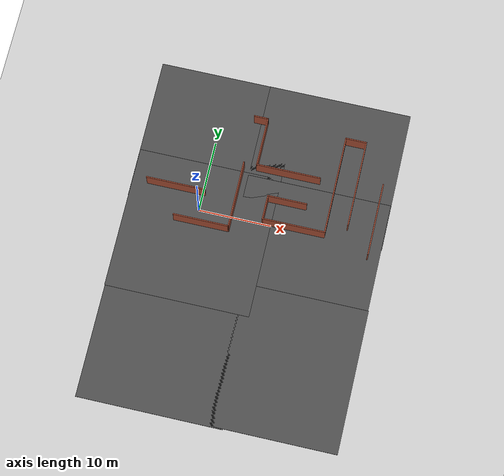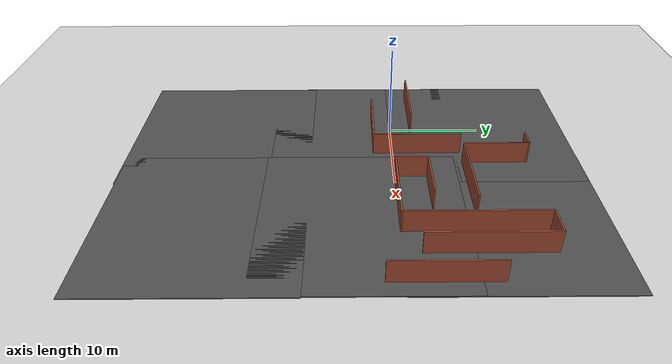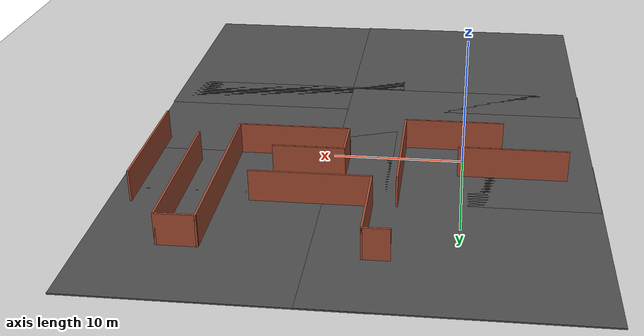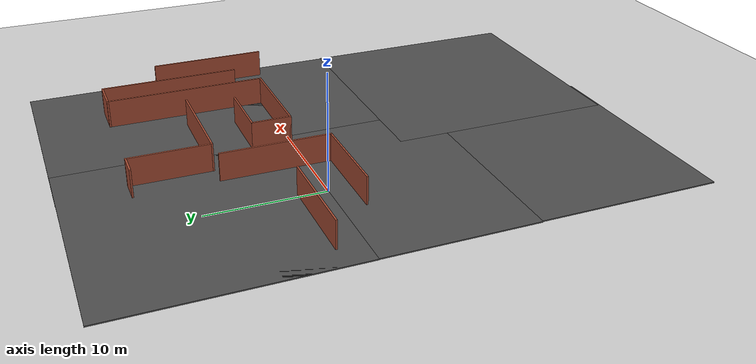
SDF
<sdf version="1.6">
 <world name="default">
  <light name="sun" type="directional">
   <pose>0 0 10 0 -0 0</pose>
   <diffuse>0.8 0.8 0.8 1</diffuse>
   <specular>0.2 0.2 0.2 1</specular>
   <attenuation>
    <range>1000</range>
    <constant>0.9</constant>
    <linear>0.01</linear>
    <quadratic>0.001</quadratic>
   </attenuation>
   <direction>-0.5 0.1 -0.9</direction>
   <spot><inner_angle>0</inner_angle><outer_angle>0</outer_angle><falloff>0</falloff></spot>
  </light>
  <model name="ground_plane">
   <static>1</static>
   <link name="link">
    <collision name="collision">
     <geometry><plane><normal>0 0 1</normal><size>100 100</size></plane></geometry>
     <surface><friction><ode><mu>100</mu><mu2>50</mu2></ode></friction></surface>
    </collision>
    <visual name="visual">
     <cast_shadows>0</cast_shadows>
     <geometry><plane><normal>0 0 1</normal><size>100 100</size></plane></geometry>
     <material>
      <script><uri>file://media/materials/scripts/gazebo.material</uri><name>Gazebo/Grey</name></script>
     </material>
    </visual>
    <velocity_decay><linear>0</linear><angular>0</angular></velocity_decay>
   </link>
  </model>
  <physics name="default_physics" default="0" type="ode">
   <max_step_size>0.001</max_step_size>
   <real_time_factor>1</real_time_factor>
   <real_time_update_rate>1000</real_time_update_rate>
  </physics>
  <scene><ambient>0.4 0.4 0.4 1</ambient><background>0.7 0.7 0.7 1</background><shadows>1</shadows></scene>
  <spherical_coordinates>
   <surface_model>EARTH_WGS84</surface_model>
   <latitude_deg>0</latitude_deg>
   <longitude_deg>0</longitude_deg>
   <elevation>0</elevation>
   <heading_deg>0</heading_deg>
  </spherical_coordinates>
  <model name="asphalt_plane">
   <static>1</static>
   <link name="link">
    <collision name="collision"><geometry><box><size>20 20 0.1</size></box></geometry></collision>
    <visual name="visual">
     <cast_shadows>0</cast_shadows>
     <geometry><box><size>20 20 0.1</size></box></geometry>
     <material>
      <script>
       <uri>model://asphalt_plane/materials/scripts</uri>
       <uri>model://asphalt_plane/materials/textures</uri>
       <name>vrc/asphalt</name>
      </script>
     </material>
    </visual>
    <velocity_decay><linear>0</linear><angular>0</angular></velocity_decay>
   </link>
   <pose>0.030437 -3.13546 0 0 -0 0</pose>
  </model>
  <model name="asphalt_plane_0">
   <static>1</static>
   <link name="link">
    <collision name="collision"><geometry><box><size>20 20 0.1</size></box></geometry></collision>
    <visual name="visual">
     <cast_shadows>0</cast_shadows>
     <geometry><box><size>20 20 0.1</size></box></geometry>
     <material>
      <script>
       <uri>model://asphalt_plane/materials/scripts</uri>
       <uri>model://asphalt_plane/materials/textures</uri>
       <name>vrc/asphalt</name>
      </script>
     </material>
    </visual>
    <velocity_decay><linear>0</linear><angular>0</angular></velocity_decay>
   </link>
   <pose>0 10 0 0 -0 0</pose>
  </model>
  <model name="asphalt_plane_1">
   <static>1</static>
   <link name="link">
    <collision name="collision"><geometry><box><size>20 20 0.1</size></box></geometry></collision>
    <visual name="visual">
     <cast_shadows>0</cast_shadows>
     <geometry><box><size>20 20 0.1</size></box></geometry>
     <material>
      <script>
       <uri>model://asphalt_plane/materials/scripts</uri>
       <uri>model://asphalt_plane/materials/textures</uri>
       <name>vrc/asphalt</name>
      </script>
     </material>
    </visual>
    <velocity_decay><linear>0</linear><angular>0</angular></velocity_decay>
   </link>
   <pose>15.4936 10.0185 0 0 -0 0</pose>
  </model>
  <model name="asphalt_plane_2">
   <static>1</static>
   <link name="link">
    <collision name="collision"><geometry><box><size>20 20 0.1</size></box></geometry></collision>
    <visual name="visual">
     <cast_shadows>0</cast_shadows>
     <geometry><box><size>20 20 0.1</size></box></geometry>
     <material>
      <script>
       <uri>model://asphalt_plane/materials/scripts</uri>
       <uri>model://asphalt_plane/materials/textures</uri>
       <name>vrc/asphalt</name>
      </script>
     </material>
    </visual>
    <velocity_decay><linear>0</linear><angular>0</angular></velocity_decay>
   </link>
   <pose>0.098625 -18.8432 0 0 -0 0</pose>
  </model>
  <model name="asphalt_plane_3">
   <static>1</static>
   <link name="link">
    <collision name="collision"><geometry><box><size>20 20 0.1</size></box></geometry></collision>
    <visual name="visual">
     <cast_shadows>0</cast_shadows>
     <geometry><box><size>20 20 0.1</size></box></geometry>
     <material>
      <script>
       <uri>model://asphalt_plane/materials/scripts</uri>
       <uri>model://asphalt_plane/materials/textures</uri>
       <name>vrc/asphalt</name>
      </script>
     </material>
    </visual>
    <velocity_decay><linear>0</linear><angular>0</angular></velocity_decay>
   </link>
   <pose>15.5136 -18.7124 0 0 -0 0</pose>
  </model>
  <model name="asphalt_plane_4">
   <static>1</static>
   <link name="link">
    <collision name="collision"><geometry><box><size>20 20 0.1</size></box></geometry></collision>
    <visual name="visual">
     <cast_shadows>0</cast_shadows>
     <geometry><box><size>20 20 0.1</size></box></geometry>
     <material>
      <script>
       <uri>model://asphalt_plane/materials/scripts</uri>
       <uri>model://asphalt_plane/materials/textures</uri>
       <name>vrc/asphalt</name>
      </script>
     </material>
    </visual>
    <velocity_decay><linear>0</linear><angular>0</angular></velocity_decay>
   </link>
   <pose>15.4321 -3.44172 0 0 -0 0</pose>
  </model>
  <gravity>0 0 -9.8</gravity>
  <magnetic_field>6e-06 2.3e-05 -4.2e-05</magnetic_field>
  <atmosphere type="adiabatic"/>
  <model name="Untitled">
   <pose>8.00835 6.14846 0 0 -0 0</pose>
   <link name="Wall_40">
    <collision name="Wall_40_Collision">
     <geometry><box><size>7.75 0.15 2.5</size></box></geometry>
     <pose>0 0 1.25 0 -0 0</pose>
    </collision>
    <visual name="Wall_40_Visual">
     <pose>0 0 1.25 0 -0 0</pose>
     <geometry><box><size>7.75 0.15 2.5</size></box></geometry>
     <material>
      <script><uri>file://media/materials/scripts/gazebo.material</uri><name>Gazebo/Bricks</name></script>
      <ambient>1 1 1 1</ambient>
     </material>
     <meta><layer>0</layer></meta>
    </visual>
    <pose>-7.20526 -8.15693 0 0 -0 0</pose>
   </link>
   <link name="Wall_41">
    <collision name="Wall_41_Collision">
     <geometry><box><size>9.5 0.15 2.5</size></box></geometry>
     <pose>0 0 1.25 0 -0 0</pose>
    </collision>
    <visual name="Wall_41_Visual">
     <pose>0 0 1.25 0 -0 0</pose>
     <geometry><box><size>9.5 0.15 2.5</size></box></geometry>
     <material>
      <script><uri>file://media/materials/scripts/gazebo.material</uri><name>Gazebo/Bricks</name></script>
      <ambient>1 1 1 1</ambient>
     </material>
     <meta><layer>0</layer></meta>
    </visual>
    <pose>-3.40526 -3.48193 0 0 -0 1.5708</pose>
   </link>
   <link name="Wall_43">
    <collision name="Wall_43_Collision">
     <geometry><box><size>7 0.15 2.5</size></box></geometry>
     <pose>0 0 1.25 0 -0 0</pose>
    </collision>
    <visual name="Wall_43_Visual">
     <pose>0 0 1.25 0 -0 0</pose>
     <geometry><box><size>7 0.15 2.5</size></box></geometry>
     <material>
      <script><uri>file://media/materials/scripts/gazebo.material</uri><name>Gazebo/Bricks</name></script>
      <ambient>1 1 1 1</ambient>
     </material>
     <meta><layer>0</layer></meta>
    </visual>
    <pose>-1.60766 4.73193 0 0 -0 1.5708</pose>
   </link>
   <link name="Wall_44">
    <collision name="Wall_44_Collision">
     <geometry><box><size>2 0.15 2.5</size></box></geometry>
     <pose>0 0 1.25 0 -0 0</pose>
    </collision>
    <visual name="Wall_44_Visual">
     <pose>0 0 1.25 0 -0 0</pose>
     <geometry><box><size>2 0.15 2.5</size></box></geometry>
     <material>
      <script><uri>file://media/materials/scripts/gazebo.material</uri><name>Gazebo/Bricks</name></script>
      <ambient>1 1 1 1</ambient>
     </material>
     <meta><layer>0</layer></meta>
    </visual>
    <pose>-2.53266 8.15693 0 0 -0 3.14159</pose>
   </link>
   <link name="Wall_47">
    <collision name="Wall_47_Collision">
     <geometry><box><size>8.25 0.15 2.5</size></box></geometry>
     <pose>0 0 1.25 0 -0 0</pose>
    </collision>
    <visual name="Wall_47_Visual">
     <pose>0 0 1.25 0 -0 0</pose>
     <geometry><box><size>8.25 0.15 2.5</size></box></geometry>
     <material>
      <script><uri>file://media/materials/scripts/gazebo.material</uri><name>Gazebo/Bricks</name></script>
      <ambient>1 1 1 1</ambient>
     </material>
     <meta><layer>0</layer></meta>
    </visual>
    <pose>-11.7412 -3.80321 0 0 -0 3.14159</pose>
   </link>
   <link name="Wall_49">
    <collision name="Wall_49_Collision">
     <geometry><box><size>9 0.15 2.5</size></box></geometry>
     <pose>0 0 1.25 0 -0 0</pose>
    </collision>
    <visual name="Wall_49_Visual">
     <pose>0 0 1.25 0 -0 0</pose>
     <geometry><box><size>9 0.15 2.5</size></box></geometry>
     <material>
      <script><uri>file://media/materials/scripts/gazebo.material</uri><name>Gazebo/Bricks</name></script>
      <ambient>1 1 1 1</ambient>
     </material>
     <meta><layer>0</layer></meta>
    </visual>
    <pose>2.81734 1.30693 0 0 -0 0</pose>
   </link>
   <link name="Wall_51">
    <collision name="Wall_51_Collision">
     <geometry><box><size>14 0.15 2.5</size></box></geometry>
     <pose>0 0 1.25 0 -0 0</pose>
    </collision>
    <visual name="Wall_51_Visual">
     <pose>0 0 1.25 0 -0 0</pose>
     <geometry><box><size>14 0.15 2.5</size></box></geometry>
     <material>
      <script><uri>file://media/materials/scripts/gazebo.material</uri><name>Gazebo/Bricks</name></script>
      <ambient>1 1 1 1</ambient>
     </material>
     <meta><layer>0</layer></meta>
    </visual>
    <pose>9.46431 0.830443 0 0 -0 -1.5708</pose>
   </link>
   <link name="Wall_52">
    <collision name="Wall_52_Collision">
     <geometry><box><size>8.75 0.15 2.5</size></box></geometry>
     <pose>0 0 1.25 0 -0 0</pose>
    </collision>
    <visual name="Wall_52_Visual">
     <pose>0 0 1.25 0 -0 0</pose>
     <geometry><box><size>8.75 0.15 2.5</size></box></geometry>
     <material>
      <script><uri>file://media/materials/scripts/gazebo.material</uri><name>Gazebo/Bricks</name></script>
      <ambient>1 1 1 1</ambient>
     </material>
     <meta><layer>0</layer></meta>
    </visual>
    <pose>5.16432 -6.09456 0 0 -0 3.14159</pose>
   </link>
   <link name="Wall_53">
    <collision name="Wall_53_Collision">
     <geometry><box><size>3.5 0.15 2.5</size></box></geometry>
     <pose>0 0 1.25 0 -0 0</pose>
    </collision>
    <visual name="Wall_53_Visual">
     <pose>0 0 1.25 0 -0 0</pose>
     <geometry><box><size>3.5 0.15 2.5</size></box></geometry>
     <material>
      <script><uri>file://media/materials/scripts/gazebo.material</uri><name>Gazebo/Bricks</name></script>
      <ambient>1 1 1 1</ambient>
     </material>
     <meta><layer>0</layer></meta>
    </visual>
    <pose>0.864316 -4.41956 0 0 -0 1.5708</pose>
   </link>
   <link name="Wall_54">
    <collision name="Wall_54_Collision">
     <geometry><box><size>5.5 0.15 2.5</size></box></geometry>
     <pose>0 0 1.25 0 -0 0</pose>
    </collision>
    <visual name="Wall_54_Visual">
     <pose>0 0 1.25 0 -0 0</pose>
     <geometry><box><size>5.5 0.15 2.5</size></box></geometry>
     <material>
      <script><uri>file://media/materials/scripts/gazebo.material</uri><name>Gazebo/Bricks</name></script>
      <ambient>1 1 1 1</ambient>
     </material>
     <meta><layer>0</layer></meta>
    </visual>
    <pose>3.53932 -2.74456 0 0 -0 0</pose>
   </link>
   <link name="Wall_59">
    <collision name="Wall_59_Collision">
     <geometry><box><size>10.25 0.15 2.5</size></box></geometry>
     <pose>0 0 1.25 0 -0 0</pose>
    </collision>
    <visual name="Wall_59_Visual">
     <pose>0 0 1.25 0 -0 0</pose>
     <geometry><box><size>10.25 0.15 2.5</size></box></geometry>
     <material>
      <script><uri>file://media/materials/scripts/gazebo.material</uri><name>Gazebo/Bricks</name></script>
      <ambient>1 1 1 1</ambient>
     </material>
     <meta><layer>0</layer></meta>
    </visual>
    <pose>15.7912 -2.76832 0 0 -0 1.5708</pose>
   </link>
   <link name="Wall_62">
    <collision name="Wall_62_Collision">
     <geometry><box><size>3 0.15 2.5</size></box></geometry>
     <pose>0 0 1.25 0 -0 0</pose>
    </collision>
    <visual name="Wall_62_Visual">
     <pose>0 0 1.25 0 -0 0</pose>
     <geometry><box><size>3 0.15 2.5</size></box></geometry>
     <material>
      <script><uri>file://media/materials/scripts/gazebo.material</uri><name>Gazebo/Bricks</name></script>
      <ambient>1 1 1 1</ambient>
     </material>
     <meta><layer>0</layer></meta>
    </visual>
    <pose>10.8893 7.75544 0 0 -0 0</pose>
   </link>
   <link name="Wall_63">
    <collision name="Wall_63_Collision">
     <geometry><box><size>12.25 0.15 2.5</size></box></geometry>
     <pose>0 0 1.25 0 -0 0</pose>
    </collision>
    <visual name="Wall_63_Visual">
     <pose>0 0 1.25 0 -0 0</pose>
     <geometry><box><size>12.25 0.15 2.5</size></box></geometry>
     <material>
      <script><uri>file://media/materials/scripts/gazebo.material</uri><name>Gazebo/Bricks</name></script>
      <ambient>1 1 1 1</ambient>
     </material>
     <meta><layer>0</layer></meta>
    </visual>
    <pose>12.3143 1.70544 0 0 -0 -1.5708</pose>
   </link>
   <static>1</static>
  </model>
 </world>
</sdf>
